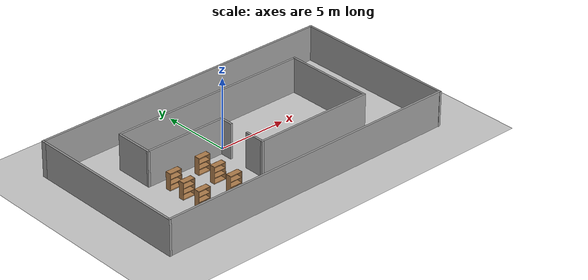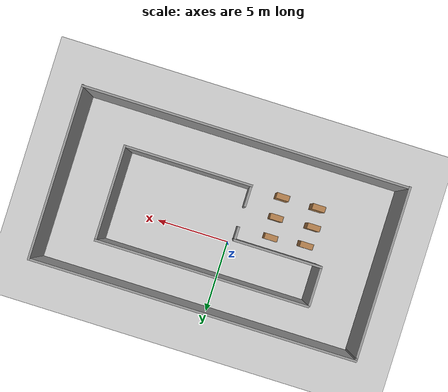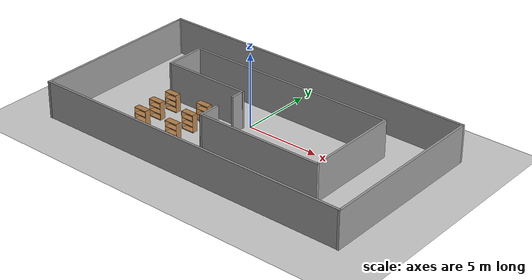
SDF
<sdf version="1.6">
 <world name="default">
  <light name="sun" type="directional">
   <pose>0 0 10 0 -0 0</pose>
   <diffuse>0.8 0.8 0.8 1</diffuse>
   <specular>0.1 0.1 0.1 1</specular>
   <attenuation>
    <range>1000</range>
    <constant>0.9</constant>
    <linear>0.01</linear>
    <quadratic>0.001</quadratic>
   </attenuation>
   <direction>-0.5 0.5 -1</direction>
  </light>
  <model name="ground_plane">
   <static>1</static>
   <link name="link">
    <collision name="collision">
     <geometry><plane><normal>0 0 1</normal><size>100 100</size></plane></geometry>
     <surface><friction><ode><mu>100</mu><mu2>50</mu2></ode></friction></surface>
    </collision>
    <visual name="visual">
     <cast_shadows>0</cast_shadows>
     <geometry><plane><normal>0 0 1</normal><size>100 100</size></plane></geometry>
     <material>
      <script><uri>file://media/materials/scripts/gazebo.material</uri><name>Gazebo/Grey</name></script>
     </material>
    </visual>
   </link>
  </model>
  <gravity>0 0 -9.8</gravity>
  <magnetic_field>6e-06 2.3e-05 -4.2e-05</magnetic_field>
  <atmosphere type="adiabatic"/>
  <physics name="default_physics" default="0" type="ode">
   <max_step_size>0.001</max_step_size>
   <real_time_factor>1</real_time_factor>
   <real_time_update_rate>1000</real_time_update_rate>
  </physics>
  <scene><ambient>0.4 0.4 0.4 1</ambient><background>0.7 0.7 0.7 1</background><shadows>1</shadows></scene>
  <spherical_coordinates>
   <surface_model>EARTH_WGS84</surface_model>
   <latitude_deg>0</latitude_deg>
   <longitude_deg>0</longitude_deg>
   <elevation>0</elevation>
   <heading_deg>0</heading_deg>
  </spherical_coordinates>
  <model name="wallroom2">
   <pose>0.910077 -1.07602 0 0 -0 0</pose>
   <link name="Wall_1">
    <collision name="Wall_1_Collision">
     <geometry><box><size>11.612 0.15 2.5</size></box></geometry>
     <pose>0 0 1.25 0 -0 0</pose>
    </collision>
    <visual name="Wall_1_Visual">
     <pose>0 0 1.25 0 -0 0</pose>
     <geometry><box><size>11.612 0.15 2.5</size></box></geometry>
     <material>
      <script><uri>file://media/materials/scripts/gazebo.material</uri><name>Gazebo/Grey</name></script>
      <ambient>1 1 1 1</ambient>
     </material>
    </visual>
    <pose>-11.05 -0.125 0 0 0 -1.5708</pose>
   </link>
   <link name="Wall_10">
    <collision name="Wall_10_Collision">
     <geometry><box><size>1.5 0.15 2.5</size></box></geometry>
     <pose>0 0 1.25 0 -0 0</pose>
    </collision>
    <visual name="Wall_10_Visual">
     <pose>0 0 1.25 0 -0 0</pose>
     <geometry><box><size>1.5 0.15 2.5</size></box></geometry>
     <material>
      <script><uri>file://media/materials/scripts/gazebo.material</uri><name>Gazebo/Grey</name></script>
      <ambient>1 1 1 1</ambient>
     </material>
    </visual>
    <pose>-1.24969 -2.26286 0 0 -0 1.5708</pose>
   </link>
   <link name="Wall_12">
    <collision name="Wall_12_Collision">
     <geometry><box><size>1 0.15 2.5</size></box></geometry>
     <pose>0 0 1.25 0 -0 0</pose>
    </collision>
    <visual name="Wall_12_Visual">
     <pose>0 0 1.25 0 -0 0</pose>
     <geometry><box><size>1 0.15 2.5</size></box></geometry>
     <material>
      <script><uri>file://media/materials/scripts/gazebo.material</uri><name>Gazebo/Grey</name></script>
      <ambient>1 1 1 1</ambient>
     </material>
    </visual>
    <pose>-1.27016 0.319259 0 0 -0 1.5708</pose>
   </link>
   <link name="Wall_13">
    <collision name="Wall_13_Collision">
     <geometry><box><size>6.01335 0.15 2.5</size></box></geometry>
     <pose>0 0 1.25 0 -0 0</pose>
    </collision>
    <visual name="Wall_13_Visual">
     <pose>0 0 1.25 0 -0 0</pose>
     <geometry><box><size>6.01335 0.15 2.5</size></box></geometry>
     <material>
      <script><uri>file://media/materials/scripts/gazebo.material</uri><name>Gazebo/Grey</name></script>
      <ambient>1 1 1 1</ambient>
     </material>
    </visual>
    <pose>-4.18434 0.744259 0 0 -0 3.14159</pose>
   </link>
   <link name="Wall_16">
    <collision name="Wall_16_Collision">
     <geometry><box><size>2.75 0.15 2.5</size></box></geometry>
     <pose>0 0 1.25 0 -0 0</pose>
    </collision>
    <visual name="Wall_16_Visual">
     <pose>0 0 1.25 0 -0 0</pose>
     <geometry><box><size>2.75 0.15 2.5</size></box></geometry>
     <material>
      <script><uri>file://media/materials/scripts/gazebo.material</uri><name>Gazebo/Grey</name></script>
      <ambient>1 1 1 1</ambient>
     </material>
    </visual>
    <pose>-7.11601 2.04426 0 0 -0 1.5708</pose>
   </link>
   <link name="Wall_2">
    <collision name="Wall_2_Collision">
     <geometry><box><size>22.25 0.15 2.5</size></box></geometry>
     <pose>0 0 1.25 0 -0 0</pose>
    </collision>
    <visual name="Wall_2_Visual">
     <pose>0 0 1.25 0 -0 0</pose>
     <geometry><box><size>22.25 0.15 2.5</size></box></geometry>
     <material>
      <script><uri>file://media/materials/scripts/gazebo.material</uri><name>Gazebo/Grey</name></script>
      <ambient>1 1 1 1</ambient>
     </material>
    </visual>
    <pose>0 -5.82941 0 0 -0 0</pose>
   </link>
   <link name="Wall_3">
    <collision name="Wall_3_Collision">
     <geometry><box><size>11.862 0.15 2.5</size></box></geometry>
     <pose>0 0 1.25 0 -0 0</pose>
    </collision>
    <visual name="Wall_3_Visual">
     <pose>0 0 1.25 0 -0 0</pose>
     <geometry><box><size>11.862 0.15 2.5</size></box></geometry>
     <material>
      <script><uri>file://media/materials/scripts/gazebo.material</uri><name>Gazebo/Grey</name></script>
      <ambient>1 1 1 1</ambient>
     </material>
    </visual>
    <pose>11.05 0 0 0 -0 1.5708</pose>
   </link>
   <link name="Wall_4">
    <collision name="Wall_4_Collision">
     <geometry><box><size>22.25 0.15 2.5</size></box></geometry>
     <pose>0 0 1.25 0 -0 0</pose>
    </collision>
    <visual name="Wall_4_Visual">
     <pose>0 0 1.25 0 -0 0</pose>
     <geometry><box><size>22.25 0.15 2.5</size></box></geometry>
     <material>
      <script><uri>file://media/materials/scripts/gazebo.material</uri><name>Gazebo/Grey</name></script>
      <ambient>1 1 1 1</ambient>
     </material>
    </visual>
    <pose>0 5.85601 0 0 -0 3.14159</pose>
   </link>
   <link name="Wall_5">
    <collision name="Wall_5_Collision">
     <geometry><box><size>0.4 0.15 2.5</size></box></geometry>
     <pose>0 0 1.25 0 -0 0</pose>
    </collision>
    <visual name="Wall_5_Visual">
     <pose>0 0 1.25 0 -0 0</pose>
     <geometry><box><size>0.4 0.15 2.5</size></box></geometry>
     <material>
      <script><uri>file://media/materials/scripts/gazebo.material</uri><name>Gazebo/Grey</name></script>
      <ambient>1 1 1 1</ambient>
     </material>
    </visual>
    <pose>-11.05 5.73101 0 0 0 -1.5708</pose>
   </link>
   <link name="Wall_7">
    <collision name="Wall_7_Collision">
     <geometry><box><size>14.5 0.15 2.5</size></box></geometry>
     <pose>0 0 1.25 0 -0 0</pose>
    </collision>
    <visual name="Wall_7_Visual">
     <pose>0 0 1.25 0 -0 0</pose>
     <geometry><box><size>14.5 0.15 2.5</size></box></geometry>
     <material>
      <script><uri>file://media/materials/scripts/gazebo.material</uri><name>Gazebo/Grey</name></script>
      <ambient>1 1 1 1</ambient>
     </material>
    </visual>
    <pose>0.126986 3.41214 0 0 -0 0</pose>
   </link>
   <link name="Wall_8">
    <collision name="Wall_8_Collision">
     <geometry><box><size>6.5 0.15 2.5</size></box></geometry>
     <pose>0 0 1.25 0 -0 0</pose>
    </collision>
    <visual name="Wall_8_Visual">
     <pose>0 0 1.25 0 -0 0</pose>
     <geometry><box><size>6.5 0.15 2.5</size></box></geometry>
     <material>
      <script><uri>file://media/materials/scripts/gazebo.material</uri><name>Gazebo/Grey</name></script>
      <ambient>1 1 1 1</ambient>
     </material>
    </visual>
    <pose>7.30199 0.237136 0 0 0 -1.5708</pose>
   </link>
   <link name="Wall_9">
    <collision name="Wall_9_Collision">
     <geometry><box><size>8.71917 0.15 2.5</size></box></geometry>
     <pose>0 0 1.25 0 -0 0</pose>
    </collision>
    <visual name="Wall_9_Visual">
     <pose>0 0 1.25 0 -0 0</pose>
     <geometry><box><size>8.71917 0.15 2.5</size></box></geometry>
     <material>
      <script><uri>file://media/materials/scripts/gazebo.material</uri><name>Gazebo/Grey</name></script>
      <ambient>1 1 1 1</ambient>
     </material>
    </visual>
    <pose>3.0174 -2.93786 0 0 -0 3.14159</pose>
   </link>
   <static>1</static>
  </model>
  <model name="bookshelf">
   <static>1</static>
   <link name="link">
    <inertial><mass>1</mass></inertial>
    <collision name="back">
     <pose>0 0.005 0.6 0 -0 0</pose>
     <geometry><box><size>0.9 0.01 1.2</size></box></geometry>
    </collision>
    <visual name="visual1">
     <pose>0 0.005 0.6 0 -0 0</pose>
     <geometry><box><size>0.9 0.01 1.2</size></box></geometry>
     <material>
      <script><uri>file://media/materials/scripts/gazebo.material</uri><name>Gazebo/Wood</name></script>
     </material>
    </visual>
    <collision name="left_side">
     <pose>0.45 -0.195 0.6 0 -0 0</pose>
     <geometry><box><size>0.02 0.4 1.2</size></box></geometry>
    </collision>
    <visual name="visual2">
     <pose>0.45 -0.195 0.6 0 -0 0</pose>
     <geometry><box><size>0.02 0.4 1.2</size></box></geometry>
     <material>
      <script><uri>file://media/materials/scripts/gazebo.material</uri><name>Gazebo/Wood</name></script>
     </material>
    </visual>
    <collision name="right_side">
     <pose>-0.45 -0.195 0.6 0 -0 0</pose>
     <geometry><box><size>0.02 0.4 1.2</size></box></geometry>
    </collision>
    <visual name="visual3">
     <pose>-0.45 -0.195 0.6 0 -0 0</pose>
     <geometry><box><size>0.02 0.4 1.2</size></box></geometry>
     <material>
      <script><uri>file://media/materials/scripts/gazebo.material</uri><name>Gazebo/Wood</name></script>
     </material>
    </visual>
    <collision name="bottom">
     <pose>0 -0.195 0.03 0 -0 0</pose>
     <geometry><box><size>0.88 0.4 0.06</size></box></geometry>
    </collision>
    <visual name="visual4">
     <pose>0 -0.195 0.03 0 -0 0</pose>
     <geometry><box><size>0.88 0.4 0.06</size></box></geometry>
     <material>
      <script><uri>file://media/materials/scripts/gazebo.material</uri><name>Gazebo/Wood</name></script>
     </material>
    </visual>
    <collision name="top">
     <pose>0 -0.195 1.19 0 -0 0</pose>
     <geometry><box><size>0.88 0.4 0.02</size></box></geometry>
    </collision>
    <visual name="visual5">
     <pose>0 -0.195 1.19 0 -0 0</pose>
     <geometry><box><size>0.88 0.4 0.02</size></box></geometry>
     <material>
      <script><uri>file://media/materials/scripts/gazebo.material</uri><name>Gazebo/Wood</name></script>
     </material>
    </visual>
    <collision name="low_shelf">
     <pose>0 -0.195 0.43 0 -0 0</pose>
     <geometry><box><size>0.88 0.4 0.02</size></box></geometry>
    </collision>
    <visual name="visual6">
     <pose>0 -0.195 0.43 0 -0 0</pose>
     <geometry><box><size>0.88 0.4 0.02</size></box></geometry>
     <material>
      <script><uri>file://media/materials/scripts/gazebo.material</uri><name>Gazebo/Wood</name></script>
     </material>
    </visual>
    <collision name="high_shelf">
     <pose>0 -0.195 0.8 0 -0 0</pose>
     <geometry><box><size>0.88 0.4 0.02</size></box></geometry>
    </collision>
    <visual name="visual7">
     <pose>0 -0.195 0.8 0 -0 0</pose>
     <geometry><box><size>0.88 0.4 0.02</size></box></geometry>
     <material>
      <script><uri>file://media/materials/scripts/gazebo.material</uri><name>Gazebo/Wood</name></script>
     </material>
    </visual>
   </link>
   <pose>-2.64163 -3.84099 0 0 -0 0</pose>
  </model>
  <model name="bookshelf_0">
   <static>1</static>
   <link name="link">
    <inertial><mass>1</mass></inertial>
    <collision name="back">
     <pose>0 0.005 0.6 0 -0 0</pose>
     <geometry><box><size>0.9 0.01 1.2</size></box></geometry>
    </collision>
    <visual name="visual1">
     <pose>0 0.005 0.6 0 -0 0</pose>
     <geometry><box><size>0.9 0.01 1.2</size></box></geometry>
     <material>
      <script><uri>file://media/materials/scripts/gazebo.material</uri><name>Gazebo/Wood</name></script>
     </material>
    </visual>
    <collision name="left_side">
     <pose>0.45 -0.195 0.6 0 -0 0</pose>
     <geometry><box><size>0.02 0.4 1.2</size></box></geometry>
    </collision>
    <visual name="visual2">
     <pose>0.45 -0.195 0.6 0 -0 0</pose>
     <geometry><box><size>0.02 0.4 1.2</size></box></geometry>
     <material>
      <script><uri>file://media/materials/scripts/gazebo.material</uri><name>Gazebo/Wood</name></script>
     </material>
    </visual>
    <collision name="right_side">
     <pose>-0.45 -0.195 0.6 0 -0 0</pose>
     <geometry><box><size>0.02 0.4 1.2</size></box></geometry>
    </collision>
    <visual name="visual3">
     <pose>-0.45 -0.195 0.6 0 -0 0</pose>
     <geometry><box><size>0.02 0.4 1.2</size></box></geometry>
     <material>
      <script><uri>file://media/materials/scripts/gazebo.material</uri><name>Gazebo/Wood</name></script>
     </material>
    </visual>
    <collision name="bottom">
     <pose>0 -0.195 0.03 0 -0 0</pose>
     <geometry><box><size>0.88 0.4 0.06</size></box></geometry>
    </collision>
    <visual name="visual4">
     <pose>0 -0.195 0.03 0 -0 0</pose>
     <geometry><box><size>0.88 0.4 0.06</size></box></geometry>
     <material>
      <script><uri>file://media/materials/scripts/gazebo.material</uri><name>Gazebo/Wood</name></script>
     </material>
    </visual>
    <collision name="top">
     <pose>0 -0.195 1.19 0 -0 0</pose>
     <geometry><box><size>0.88 0.4 0.02</size></box></geometry>
    </collision>
    <visual name="visual5">
     <pose>0 -0.195 1.19 0 -0 0</pose>
     <geometry><box><size>0.88 0.4 0.02</size></box></geometry>
     <material>
      <script><uri>file://media/materials/scripts/gazebo.material</uri><name>Gazebo/Wood</name></script>
     </material>
    </visual>
    <collision name="low_shelf">
     <pose>0 -0.195 0.43 0 -0 0</pose>
     <geometry><box><size>0.88 0.4 0.02</size></box></geometry>
    </collision>
    <visual name="visual6">
     <pose>0 -0.195 0.43 0 -0 0</pose>
     <geometry><box><size>0.88 0.4 0.02</size></box></geometry>
     <material>
      <script><uri>file://media/materials/scripts/gazebo.material</uri><name>Gazebo/Wood</name></script>
     </material>
    </visual>
    <collision name="high_shelf">
     <pose>0 -0.195 0.8 0 -0 0</pose>
     <geometry><box><size>0.88 0.4 0.02</size></box></geometry>
    </collision>
    <visual name="visual7">
     <pose>0 -0.195 0.8 0 -0 0</pose>
     <geometry><box><size>0.88 0.4 0.02</size></box></geometry>
     <material>
      <script><uri>file://media/materials/scripts/gazebo.material</uri><name>Gazebo/Wood</name></script>
     </material>
    </visual>
   </link>
   <pose>-2.65041 -2.38889 0 0 -0 0</pose>
  </model>
  <model name="bookshelf_1">
   <static>1</static>
   <link name="link">
    <inertial><mass>1</mass></inertial>
    <collision name="back">
     <pose>0 0.005 0.6 0 -0 0</pose>
     <geometry><box><size>0.9 0.01 1.2</size></box></geometry>
    </collision>
    <visual name="visual1">
     <pose>0 0.005 0.6 0 -0 0</pose>
     <geometry><box><size>0.9 0.01 1.2</size></box></geometry>
     <material>
      <script><uri>file://media/materials/scripts/gazebo.material</uri><name>Gazebo/Wood</name></script>
     </material>
    </visual>
    <collision name="left_side">
     <pose>0.45 -0.195 0.6 0 -0 0</pose>
     <geometry><box><size>0.02 0.4 1.2</size></box></geometry>
    </collision>
    <visual name="visual2">
     <pose>0.45 -0.195 0.6 0 -0 0</pose>
     <geometry><box><size>0.02 0.4 1.2</size></box></geometry>
     <material>
      <script><uri>file://media/materials/scripts/gazebo.material</uri><name>Gazebo/Wood</name></script>
     </material>
    </visual>
    <collision name="right_side">
     <pose>-0.45 -0.195 0.6 0 -0 0</pose>
     <geometry><box><size>0.02 0.4 1.2</size></box></geometry>
    </collision>
    <visual name="visual3">
     <pose>-0.45 -0.195 0.6 0 -0 0</pose>
     <geometry><box><size>0.02 0.4 1.2</size></box></geometry>
     <material>
      <script><uri>file://media/materials/scripts/gazebo.material</uri><name>Gazebo/Wood</name></script>
     </material>
    </visual>
    <collision name="bottom">
     <pose>0 -0.195 0.03 0 -0 0</pose>
     <geometry><box><size>0.88 0.4 0.06</size></box></geometry>
    </collision>
    <visual name="visual4">
     <pose>0 -0.195 0.03 0 -0 0</pose>
     <geometry><box><size>0.88 0.4 0.06</size></box></geometry>
     <material>
      <script><uri>file://media/materials/scripts/gazebo.material</uri><name>Gazebo/Wood</name></script>
     </material>
    </visual>
    <collision name="top">
     <pose>0 -0.195 1.19 0 -0 0</pose>
     <geometry><box><size>0.88 0.4 0.02</size></box></geometry>
    </collision>
    <visual name="visual5">
     <pose>0 -0.195 1.19 0 -0 0</pose>
     <geometry><box><size>0.88 0.4 0.02</size></box></geometry>
     <material>
      <script><uri>file://media/materials/scripts/gazebo.material</uri><name>Gazebo/Wood</name></script>
     </material>
    </visual>
    <collision name="low_shelf">
     <pose>0 -0.195 0.43 0 -0 0</pose>
     <geometry><box><size>0.88 0.4 0.02</size></box></geometry>
    </collision>
    <visual name="visual6">
     <pose>0 -0.195 0.43 0 -0 0</pose>
     <geometry><box><size>0.88 0.4 0.02</size></box></geometry>
     <material>
      <script><uri>file://media/materials/scripts/gazebo.material</uri><name>Gazebo/Wood</name></script>
     </material>
    </visual>
    <collision name="high_shelf">
     <pose>0 -0.195 0.8 0 -0 0</pose>
     <geometry><box><size>0.88 0.4 0.02</size></box></geometry>
    </collision>
    <visual name="visual7">
     <pose>0 -0.195 0.8 0 -0 0</pose>
     <geometry><box><size>0.88 0.4 0.02</size></box></geometry>
     <material>
      <script><uri>file://media/materials/scripts/gazebo.material</uri><name>Gazebo/Wood</name></script>
     </material>
    </visual>
   </link>
   <pose>-2.69106 -1.01408 0 0 -0 0</pose>
  </model>
  <model name="bookshelf_2">
   <static>1</static>
   <link name="link">
    <inertial><mass>1</mass></inertial>
    <collision name="back">
     <pose>0 0.005 0.6 0 -0 0</pose>
     <geometry><box><size>0.9 0.01 1.2</size></box></geometry>
    </collision>
    <visual name="visual1">
     <pose>0 0.005 0.6 0 -0 0</pose>
     <geometry><box><size>0.9 0.01 1.2</size></box></geometry>
     <material>
      <script><uri>file://media/materials/scripts/gazebo.material</uri><name>Gazebo/Wood</name></script>
     </material>
    </visual>
    <collision name="left_side">
     <pose>0.45 -0.195 0.6 0 -0 0</pose>
     <geometry><box><size>0.02 0.4 1.2</size></box></geometry>
    </collision>
    <visual name="visual2">
     <pose>0.45 -0.195 0.6 0 -0 0</pose>
     <geometry><box><size>0.02 0.4 1.2</size></box></geometry>
     <material>
      <script><uri>file://media/materials/scripts/gazebo.material</uri><name>Gazebo/Wood</name></script>
     </material>
    </visual>
    <collision name="right_side">
     <pose>-0.45 -0.195 0.6 0 -0 0</pose>
     <geometry><box><size>0.02 0.4 1.2</size></box></geometry>
    </collision>
    <visual name="visual3">
     <pose>-0.45 -0.195 0.6 0 -0 0</pose>
     <geometry><box><size>0.02 0.4 1.2</size></box></geometry>
     <material>
      <script><uri>file://media/materials/scripts/gazebo.material</uri><name>Gazebo/Wood</name></script>
     </material>
    </visual>
    <collision name="bottom">
     <pose>0 -0.195 0.03 0 -0 0</pose>
     <geometry><box><size>0.88 0.4 0.06</size></box></geometry>
    </collision>
    <visual name="visual4">
     <pose>0 -0.195 0.03 0 -0 0</pose>
     <geometry><box><size>0.88 0.4 0.06</size></box></geometry>
     <material>
      <script><uri>file://media/materials/scripts/gazebo.material</uri><name>Gazebo/Wood</name></script>
     </material>
    </visual>
    <collision name="top">
     <pose>0 -0.195 1.19 0 -0 0</pose>
     <geometry><box><size>0.88 0.4 0.02</size></box></geometry>
    </collision>
    <visual name="visual5">
     <pose>0 -0.195 1.19 0 -0 0</pose>
     <geometry><box><size>0.88 0.4 0.02</size></box></geometry>
     <material>
      <script><uri>file://media/materials/scripts/gazebo.material</uri><name>Gazebo/Wood</name></script>
     </material>
    </visual>
    <collision name="low_shelf">
     <pose>0 -0.195 0.43 0 -0 0</pose>
     <geometry><box><size>0.88 0.4 0.02</size></box></geometry>
    </collision>
    <visual name="visual6">
     <pose>0 -0.195 0.43 0 -0 0</pose>
     <geometry><box><size>0.88 0.4 0.02</size></box></geometry>
     <material>
      <script><uri>file://media/materials/scripts/gazebo.material</uri><name>Gazebo/Wood</name></script>
     </material>
    </visual>
    <collision name="high_shelf">
     <pose>0 -0.195 0.8 0 -0 0</pose>
     <geometry><box><size>0.88 0.4 0.02</size></box></geometry>
    </collision>
    <visual name="visual7">
     <pose>0 -0.195 0.8 0 -0 0</pose>
     <geometry><box><size>0.88 0.4 0.02</size></box></geometry>
     <material>
      <script><uri>file://media/materials/scripts/gazebo.material</uri><name>Gazebo/Wood</name></script>
     </material>
    </visual>
   </link>
   <pose>-5.12837 -1.20436 0 0 -0 0</pose>
  </model>
  <model name="bookshelf_3">
   <static>1</static>
   <link name="link">
    <inertial><mass>1</mass></inertial>
    <collision name="back">
     <pose>0 0.005 0.6 0 -0 0</pose>
     <geometry><box><size>0.9 0.01 1.2</size></box></geometry>
    </collision>
    <visual name="visual1">
     <pose>0 0.005 0.6 0 -0 0</pose>
     <geometry><box><size>0.9 0.01 1.2</size></box></geometry>
     <material>
      <script><uri>file://media/materials/scripts/gazebo.material</uri><name>Gazebo/Wood</name></script>
     </material>
    </visual>
    <collision name="left_side">
     <pose>0.45 -0.195 0.6 0 -0 0</pose>
     <geometry><box><size>0.02 0.4 1.2</size></box></geometry>
    </collision>
    <visual name="visual2">
     <pose>0.45 -0.195 0.6 0 -0 0</pose>
     <geometry><box><size>0.02 0.4 1.2</size></box></geometry>
     <material>
      <script><uri>file://media/materials/scripts/gazebo.material</uri><name>Gazebo/Wood</name></script>
     </material>
    </visual>
    <collision name="right_side">
     <pose>-0.45 -0.195 0.6 0 -0 0</pose>
     <geometry><box><size>0.02 0.4 1.2</size></box></geometry>
    </collision>
    <visual name="visual3">
     <pose>-0.45 -0.195 0.6 0 -0 0</pose>
     <geometry><box><size>0.02 0.4 1.2</size></box></geometry>
     <material>
      <script><uri>file://media/materials/scripts/gazebo.material</uri><name>Gazebo/Wood</name></script>
     </material>
    </visual>
    <collision name="bottom">
     <pose>0 -0.195 0.03 0 -0 0</pose>
     <geometry><box><size>0.88 0.4 0.06</size></box></geometry>
    </collision>
    <visual name="visual4">
     <pose>0 -0.195 0.03 0 -0 0</pose>
     <geometry><box><size>0.88 0.4 0.06</size></box></geometry>
     <material>
      <script><uri>file://media/materials/scripts/gazebo.material</uri><name>Gazebo/Wood</name></script>
     </material>
    </visual>
    <collision name="top">
     <pose>0 -0.195 1.19 0 -0 0</pose>
     <geometry><box><size>0.88 0.4 0.02</size></box></geometry>
    </collision>
    <visual name="visual5">
     <pose>0 -0.195 1.19 0 -0 0</pose>
     <geometry><box><size>0.88 0.4 0.02</size></box></geometry>
     <material>
      <script><uri>file://media/materials/scripts/gazebo.material</uri><name>Gazebo/Wood</name></script>
     </material>
    </visual>
    <collision name="low_shelf">
     <pose>0 -0.195 0.43 0 -0 0</pose>
     <geometry><box><size>0.88 0.4 0.02</size></box></geometry>
    </collision>
    <visual name="visual6">
     <pose>0 -0.195 0.43 0 -0 0</pose>
     <geometry><box><size>0.88 0.4 0.02</size></box></geometry>
     <material>
      <script><uri>file://media/materials/scripts/gazebo.material</uri><name>Gazebo/Wood</name></script>
     </material>
    </visual>
    <collision name="high_shelf">
     <pose>0 -0.195 0.8 0 -0 0</pose>
     <geometry><box><size>0.88 0.4 0.02</size></box></geometry>
    </collision>
    <visual name="visual7">
     <pose>0 -0.195 0.8 0 -0 0</pose>
     <geometry><box><size>0.88 0.4 0.02</size></box></geometry>
     <material>
      <script><uri>file://media/materials/scripts/gazebo.material</uri><name>Gazebo/Wood</name></script>
     </material>
    </visual>
   </link>
   <pose>-5.2226 -2.51523 0 0 -0 0</pose>
  </model>
  <model name="bookshelf_4">
   <static>1</static>
   <link name="link">
    <inertial><mass>1</mass></inertial>
    <collision name="back">
     <pose>0 0.005 0.6 0 -0 0</pose>
     <geometry><box><size>0.9 0.01 1.2</size></box></geometry>
    </collision>
    <visual name="visual1">
     <pose>0 0.005 0.6 0 -0 0</pose>
     <geometry><box><size>0.9 0.01 1.2</size></box></geometry>
     <material>
      <script><uri>file://media/materials/scripts/gazebo.material</uri><name>Gazebo/Wood</name></script>
     </material>
    </visual>
    <collision name="left_side">
     <pose>0.45 -0.195 0.6 0 -0 0</pose>
     <geometry><box><size>0.02 0.4 1.2</size></box></geometry>
    </collision>
    <visual name="visual2">
     <pose>0.45 -0.195 0.6 0 -0 0</pose>
     <geometry><box><size>0.02 0.4 1.2</size></box></geometry>
     <material>
      <script><uri>file://media/materials/scripts/gazebo.material</uri><name>Gazebo/Wood</name></script>
     </material>
    </visual>
    <collision name="right_side">
     <pose>-0.45 -0.195 0.6 0 -0 0</pose>
     <geometry><box><size>0.02 0.4 1.2</size></box></geometry>
    </collision>
    <visual name="visual3">
     <pose>-0.45 -0.195 0.6 0 -0 0</pose>
     <geometry><box><size>0.02 0.4 1.2</size></box></geometry>
     <material>
      <script><uri>file://media/materials/scripts/gazebo.material</uri><name>Gazebo/Wood</name></script>
     </material>
    </visual>
    <collision name="bottom">
     <pose>0 -0.195 0.03 0 -0 0</pose>
     <geometry><box><size>0.88 0.4 0.06</size></box></geometry>
    </collision>
    <visual name="visual4">
     <pose>0 -0.195 0.03 0 -0 0</pose>
     <geometry><box><size>0.88 0.4 0.06</size></box></geometry>
     <material>
      <script><uri>file://media/materials/scripts/gazebo.material</uri><name>Gazebo/Wood</name></script>
     </material>
    </visual>
    <collision name="top">
     <pose>0 -0.195 1.19 0 -0 0</pose>
     <geometry><box><size>0.88 0.4 0.02</size></box></geometry>
    </collision>
    <visual name="visual5">
     <pose>0 -0.195 1.19 0 -0 0</pose>
     <geometry><box><size>0.88 0.4 0.02</size></box></geometry>
     <material>
      <script><uri>file://media/materials/scripts/gazebo.material</uri><name>Gazebo/Wood</name></script>
     </material>
    </visual>
    <collision name="low_shelf">
     <pose>0 -0.195 0.43 0 -0 0</pose>
     <geometry><box><size>0.88 0.4 0.02</size></box></geometry>
    </collision>
    <visual name="visual6">
     <pose>0 -0.195 0.43 0 -0 0</pose>
     <geometry><box><size>0.88 0.4 0.02</size></box></geometry>
     <material>
      <script><uri>file://media/materials/scripts/gazebo.material</uri><name>Gazebo/Wood</name></script>
     </material>
    </visual>
    <collision name="high_shelf">
     <pose>0 -0.195 0.8 0 -0 0</pose>
     <geometry><box><size>0.88 0.4 0.02</size></box></geometry>
    </collision>
    <visual name="visual7">
     <pose>0 -0.195 0.8 0 -0 0</pose>
     <geometry><box><size>0.88 0.4 0.02</size></box></geometry>
     <material>
      <script><uri>file://media/materials/scripts/gazebo.material</uri><name>Gazebo/Wood</name></script>
     </material>
    </visual>
   </link>
   <pose>-5.16537 -3.8562 0 0 -0 0</pose>
  </model>
 </world>
</sdf>
